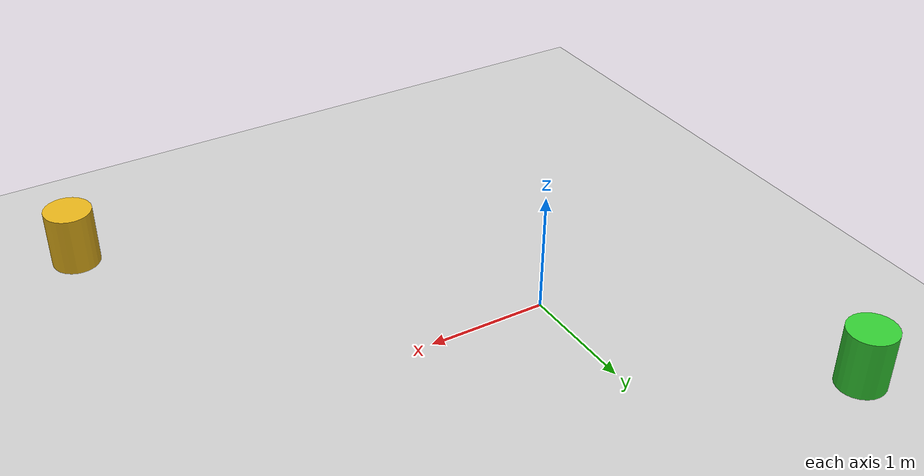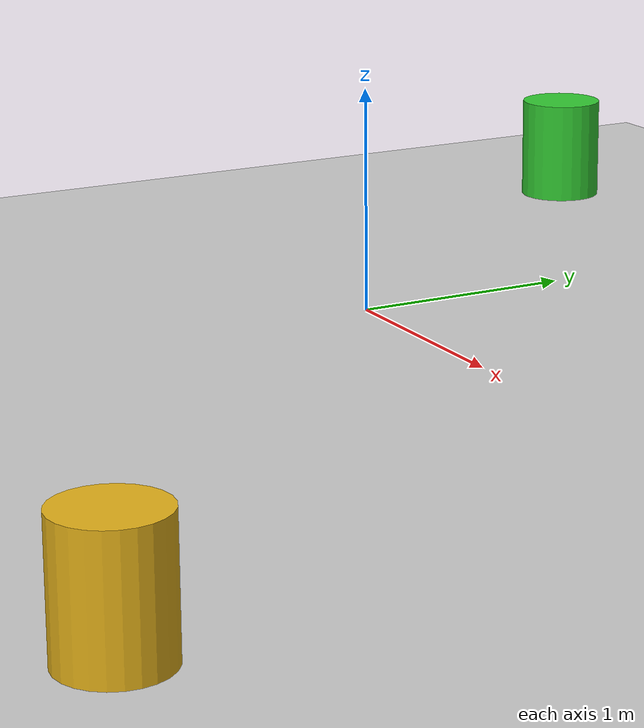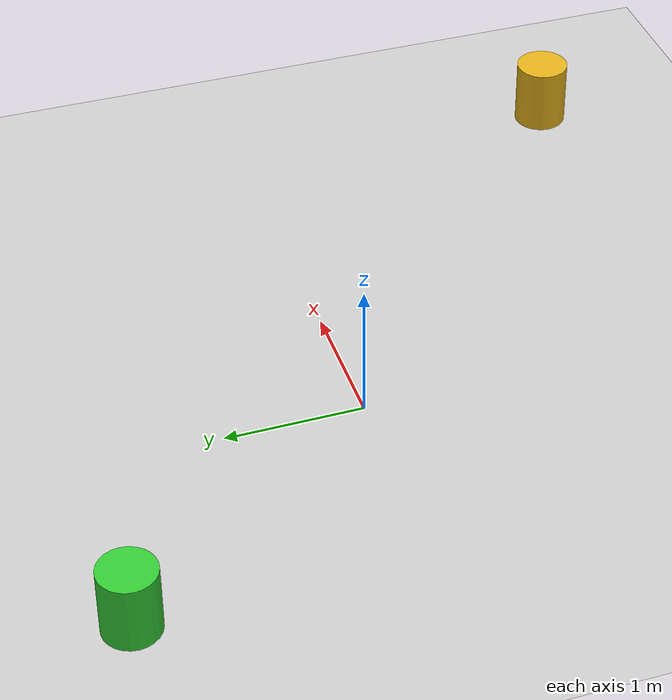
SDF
<?xml version="1.0" ?>
<sdf version="1.6">
  <world name="dynamic_obstacles">

    <physics type="ode">
      <real_time_update_rate>1000.0</real_time_update_rate>
      <max_step_size>0.001</max_step_size>
      <real_time_factor>1.0</real_time_factor>
    </physics>

    <include><uri>model://sun</uri></include>
    <include><uri>model://ground_plane</uri></include>

    <!-- Dynamic obstacle 1 — green cylinder, horizontal sweep -->
    <model name="dyn_obs_1">
      <static>false</static>
      <pose>-1.5 2.0 0.25 0 0 0</pose>
      <link name="link">
        <inertial><mass>1.0</mass></inertial>
        <collision name="c">
          <geometry>
            <cylinder><radius>0.2</radius><length>0.5</length></cylinder>
          </geometry>
        </collision>
        <visual name="v">
          <geometry>
            <cylinder><radius>0.2</radius><length>0.5</length></cylinder>
          </geometry>
          <material><ambient>0.2 0.8 0.2 1</ambient></material>
        </visual>
      </link>
    </model>

    <!-- Dynamic obstacle 2 — yellow cylinder, diagonal sweep -->
    <model name="dyn_obs_2">
      <static>false</static>
      <pose>3.0 -2.5 0.25 0 0 0</pose>
      <link name="link">
        <inertial><mass>1.0</mass></inertial>
        <collision name="c">
          <geometry>
            <cylinder><radius>0.2</radius><length>0.5</length></cylinder>
          </geometry>
        </collision>
        <visual name="v">
          <geometry>
            <cylinder><radius>0.2</radius><length>0.5</length></cylinder>
          </geometry>
          <material><ambient>0.9 0.7 0.1 1</ambient></material>
        </visual>
      </link>
    </model>

  </world>
</sdf>
